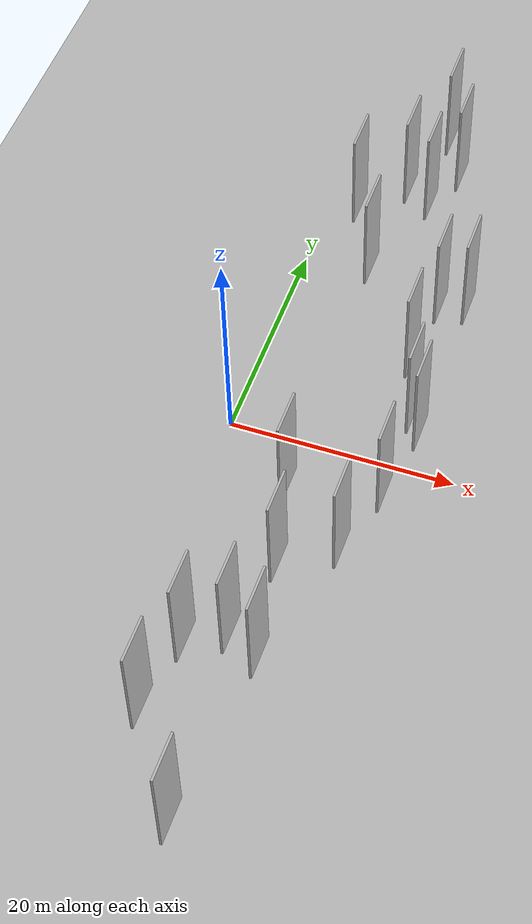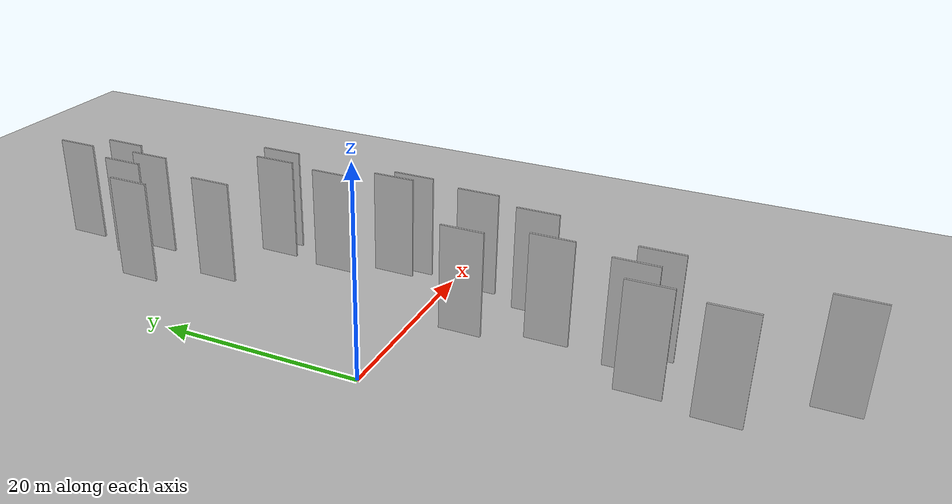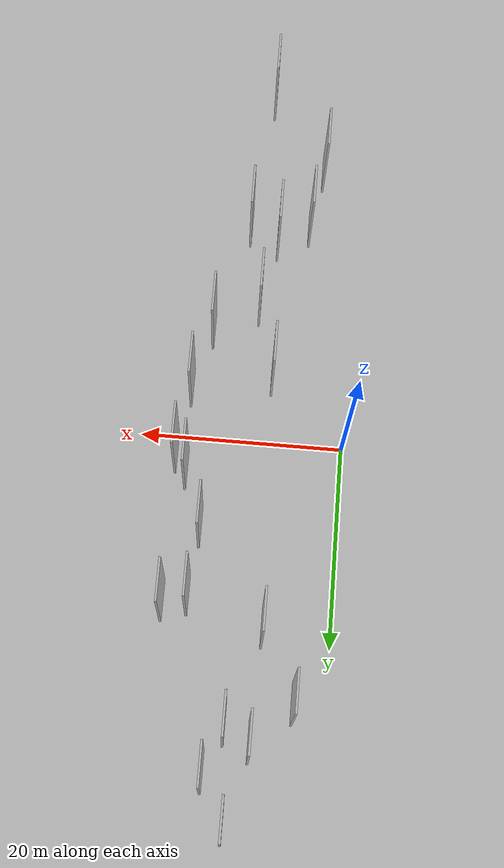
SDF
<?xml version="1.0" encoding="utf-8"?>

<sdf version="1.6">

   <world name="default">

      <gui fullscreen="0">

         <camera name="user_camera">

            <pose>-15 0 4.57585 0 0 0</pose>

            <view_controller>orbit</view_controller>

         </camera>

      </gui>

      <scene>

         <sky>

           <clouds>

             <speed>12</speed>

           </clouds>

         </sky>

         <ambient>0.4 0.4 0.4 1</ambient>

         <background>0.7 0.7 0.7 1</background>

         <shadows>1</shadows>

      </scene>

      <gravity>0 0 -9.8066</gravity>

      <magnetic_field>6e-06 2.3e-05 -4.2e-05</magnetic_field>

      <physics default="0" name="default_physics" type="ode">

         <ode>

            <solver>

               <type>quick</type>

               <iters>10</iters>

               <sor>1.0</sor>

               <use_dynamic_moi_rescaling>0</use_dynamic_moi_rescaling>

            </solver>

            <constraints>

               <cfm>0</cfm>

               <erp>0.2</erp>

               <contact_max_correcting_vel>100</contact_max_correcting_vel>

               <contact_surface_layer>0.001</contact_surface_layer>

            </constraints>

         </ode>

         <max_step_size>0.004</max_step_size>

         <real_time_factor>1</real_time_factor>

         <real_time_update_rate>250</real_time_update_rate>

      </physics>

      <light name="sun" type="directional">

         <cast_shadows>1</cast_shadows>

         <pose>0 0 10 0 0 0</pose>

         <diffuse>0.8 0.8 0.8 1</diffuse>

         <specular>0.2 0.2 0.2 1</specular>

         <attenuation>

            <range>1000</range>

            <constant>0.9</constant>

            <linear>0.01</linear>

            <quadratic>0.001</quadratic>

         </attenuation>

         <direction>-0.5 0.1 -0.9</direction>

      </light>

      <include>

         <name>ground_plane_1</name>

         <uri>model://HANNAS_ground_plane</uri>

         <pose>0 0 0  0 0 0</pose>

      </include>

      <include>

         <name>ground_plane_2</name>

         <uri>model://HANNAS_ground_plane</uri>

         <pose>100 0 0  0 0 0</pose>

      </include>

      <model name="HANNAS_wall_1">

         <static>1</static>

         <pose frame="">15.1925 -4.4480 2.5 0.000000 0.000000 1.570796</pose>

         <link name="link">

            <pose frame="">0 0 5.00 0 0 0</pose>

            <collision name="collision">

               <geometry>

                  <box>

                     <size>4.00 0.2 10.00</size>

                  </box>

               </geometry>

               <max_contacts>10</max_contacts>

               <surface>

                  <contact>

                     <ode/>

                  </contact>

                  <bounce/>

                  <friction>

                     <torsional>

                        <ode/>

                     </torsional>

                     <ode/>

                  </friction>

               </surface>

            </collision>

            <visual name="visual">

               <cast_shadows>0</cast_shadows>

               <geometry>

                  <box>

                     <size>4.00 0.2 10.00</size>

                  </box>

               </geometry>

               <material>

                  <script>

                     <uri>model://HANNAS_wall/materials/scripts</uri>

                     <uri>model://HANNAS_wall/materials/textures</uri>

                     <name>vrc/HANNAS_wall</name>

                  </script>

               </material>

            </visual>

            <self_collide>0</self_collide>

            <enable_wind>0</enable_wind>

            <kinematic>0</kinematic>

         </link>

      </model>

      <model name="HANNAS_wall_2">

         <static>1</static>

         <pose frame="">9.1956 -13.5521 2.5 0.000000 0.000000 1.570796</pose>

         <link name="link">

            <pose frame="">0 0 5.00 0 0 0</pose>

            <collision name="collision">

               <geometry>

                  <box>

                     <size>4.00 0.2 10.00</size>

                  </box>

               </geometry>

               <max_contacts>10</max_contacts>

               <surface>

                  <contact>

                     <ode/>

                  </contact>

                  <bounce/>

                  <friction>

                     <torsional>

                        <ode/>

                     </torsional>

                     <ode/>

                  </friction>

               </surface>

            </collision>

            <visual name="visual">

               <cast_shadows>0</cast_shadows>

               <geometry>

                  <box>

                     <size>4.00 0.2 10.00</size>

                  </box>

               </geometry>

               <material>

                  <script>

                     <uri>model://HANNAS_wall/materials/scripts</uri>

                     <uri>model://HANNAS_wall/materials/textures</uri>

                     <name>vrc/HANNAS_wall</name>

                  </script>

               </material>

            </visual>

            <self_collide>0</self_collide>

            <enable_wind>0</enable_wind>

            <kinematic>0</kinematic>

         </link>

      </model>

      <model name="HANNAS_wall_3">

         <static>1</static>

         <pose frame="">16.1554 17.0273 2.5 0.000000 0.000000 1.570796</pose>

         <link name="link">

            <pose frame="">0 0 5.00 0 0 0</pose>

            <collision name="collision">

               <geometry>

                  <box>

                     <size>4.00 0.2 10.00</size>

                  </box>

               </geometry>

               <max_contacts>10</max_contacts>

               <surface>

                  <contact>

                     <ode/>

                  </contact>

                  <bounce/>

                  <friction>

                     <torsional>

                        <ode/>

                     </torsional>

                     <ode/>

                  </friction>

               </surface>

            </collision>

            <visual name="visual">

               <cast_shadows>0</cast_shadows>

               <geometry>

                  <box>

                     <size>4.00 0.2 10.00</size>

                  </box>

               </geometry>

               <material>

                  <script>

                     <uri>model://HANNAS_wall/materials/scripts</uri>

                     <uri>model://HANNAS_wall/materials/textures</uri>

                     <name>vrc/HANNAS_wall</name>

                  </script>

               </material>

            </visual>

            <self_collide>0</self_collide>

            <enable_wind>0</enable_wind>

            <kinematic>0</kinematic>

         </link>

      </model>

      <model name="HANNAS_wall_4">

         <static>1</static>

         <pose frame="">16.1447 2.4765 2.5 0.000000 0.000000 1.570796</pose>

         <link name="link">

            <pose frame="">0 0 5.00 0 0 0</pose>

            <collision name="collision">

               <geometry>

                  <box>

                     <size>4.00 0.2 10.00</size>

                  </box>

               </geometry>

               <max_contacts>10</max_contacts>

               <surface>

                  <contact>

                     <ode/>

                  </contact>

                  <bounce/>

                  <friction>

                     <torsional>

                        <ode/>

                     </torsional>

                     <ode/>

                  </friction>

               </surface>

            </collision>

            <visual name="visual">

               <cast_shadows>0</cast_shadows>

               <geometry>

                  <box>

                     <size>4.00 0.2 10.00</size>

                  </box>

               </geometry>

               <material>

                  <script>

                     <uri>model://HANNAS_wall/materials/scripts</uri>

                     <uri>model://HANNAS_wall/materials/textures</uri>

                     <name>vrc/HANNAS_wall</name>

                  </script>

               </material>

            </visual>

            <self_collide>0</self_collide>

            <enable_wind>0</enable_wind>

            <kinematic>0</kinematic>

         </link>

      </model>

      <model name="HANNAS_wall_5">

         <static>1</static>

         <pose frame="">3.3052 25.6313 2.5 0.000000 0.000000 1.570796</pose>

         <link name="link">

            <pose frame="">0 0 5.00 0 0 0</pose>

            <collision name="collision">

               <geometry>

                  <box>

                     <size>4.00 0.2 10.00</size>

                  </box>

               </geometry>

               <max_contacts>10</max_contacts>

               <surface>

                  <contact>

                     <ode/>

                  </contact>

                  <bounce/>

                  <friction>

                     <torsional>

                        <ode/>

                     </torsional>

                     <ode/>

                  </friction>

               </surface>

            </collision>

            <visual name="visual">

               <cast_shadows>0</cast_shadows>

               <geometry>

                  <box>

                     <size>4.00 0.2 10.00</size>

                  </box>

               </geometry>

               <material>

                  <script>

                     <uri>model://HANNAS_wall/materials/scripts</uri>

                     <uri>model://HANNAS_wall/materials/textures</uri>

                     <name>vrc/HANNAS_wall</name>

                  </script>

               </material>

            </visual>

            <self_collide>0</self_collide>

            <enable_wind>0</enable_wind>

            <kinematic>0</kinematic>

         </link>

      </model>

      <model name="HANNAS_wall_6">

         <static>1</static>

         <pose frame="">7.0249 29.3904 2.5 0.000000 0.000000 1.570796</pose>

         <link name="link">

            <pose frame="">0 0 5.00 0 0 0</pose>

            <collision name="collision">

               <geometry>

                  <box>

                     <size>4.00 0.2 10.00</size>

                  </box>

               </geometry>

               <max_contacts>10</max_contacts>

               <surface>

                  <contact>

                     <ode/>

                  </contact>

                  <bounce/>

                  <friction>

                     <torsional>

                        <ode/>

                     </torsional>

                     <ode/>

                  </friction>

               </surface>

            </collision>

            <visual name="visual">

               <cast_shadows>0</cast_shadows>

               <geometry>

                  <box>

                     <size>4.00 0.2 10.00</size>

                  </box>

               </geometry>

               <material>

                  <script>

                     <uri>model://HANNAS_wall/materials/scripts</uri>

                     <uri>model://HANNAS_wall/materials/textures</uri>

                     <name>vrc/HANNAS_wall</name>

                  </script>

               </material>

            </visual>

            <self_collide>0</self_collide>

            <enable_wind>0</enable_wind>

            <kinematic>0</kinematic>

         </link>

      </model>

      <model name="HANNAS_wall_7">

         <static>1</static>

         <pose frame="">15.0430 4.0506 2.5 0.000000 0.000000 1.570796</pose>

         <link name="link">

            <pose frame="">0 0 5.00 0 0 0</pose>

            <collision name="collision">

               <geometry>

                  <box>

                     <size>4.00 0.2 10.00</size>

                  </box>

               </geometry>

               <max_contacts>10</max_contacts>

               <surface>

                  <contact>

                     <ode/>

                  </contact>

                  <bounce/>

                  <friction>

                     <torsional>

                        <ode/>

                     </torsional>

                     <ode/>

                  </friction>

               </surface>

            </collision>

            <visual name="visual">

               <cast_shadows>0</cast_shadows>

               <geometry>

                  <box>

                     <size>4.00 0.2 10.00</size>

                  </box>

               </geometry>

               <material>

                  <script>

                     <uri>model://HANNAS_wall/materials/scripts</uri>

                     <uri>model://HANNAS_wall/materials/textures</uri>

                     <name>vrc/HANNAS_wall</name>

                  </script>

               </material>

            </visual>

            <self_collide>0</self_collide>

            <enable_wind>0</enable_wind>

            <kinematic>0</kinematic>

         </link>

      </model>

      <model name="HANNAS_wall_8">

         <static>1</static>

         <pose frame="">9.4013 28.0020 2.5 0.000000 0.000000 1.570796</pose>

         <link name="link">

            <pose frame="">0 0 5.00 0 0 0</pose>

            <collision name="collision">

               <geometry>

                  <box>

                     <size>4.00 0.2 10.00</size>

                  </box>

               </geometry>

               <max_contacts>10</max_contacts>

               <surface>

                  <contact>

                     <ode/>

                  </contact>

                  <bounce/>

                  <friction>

                     <torsional>

                        <ode/>

                     </torsional>

                     <ode/>

                  </friction>

               </surface>

            </collision>

            <visual name="visual">

               <cast_shadows>0</cast_shadows>

               <geometry>

                  <box>

                     <size>4.00 0.2 10.00</size>

                  </box>

               </geometry>

               <material>

                  <script>

                     <uri>model://HANNAS_wall/materials/scripts</uri>

                     <uri>model://HANNAS_wall/materials/textures</uri>

                     <name>vrc/HANNAS_wall</name>

                  </script>

               </material>

            </visual>

            <self_collide>0</self_collide>

            <enable_wind>0</enable_wind>

            <kinematic>0</kinematic>

         </link>

      </model>

      <model name="HANNAS_wall_9">

         <static>1</static>

         <pose frame="">7.8689 -20.9231 2.5 0.000000 0.000000 1.570796</pose>

         <link name="link">

            <pose frame="">0 0 5.00 0 0 0</pose>

            <collision name="collision">

               <geometry>

                  <box>

                     <size>4.00 0.2 10.00</size>

                  </box>

               </geometry>

               <max_contacts>10</max_contacts>

               <surface>

                  <contact>

                     <ode/>

                  </contact>

                  <bounce/>

                  <friction>

                     <torsional>

                        <ode/>

                     </torsional>

                     <ode/>

                  </friction>

               </surface>

            </collision>

            <visual name="visual">

               <cast_shadows>0</cast_shadows>

               <geometry>

                  <box>

                     <size>4.00 0.2 10.00</size>

                  </box>

               </geometry>

               <material>

                  <script>

                     <uri>model://HANNAS_wall/materials/scripts</uri>

                     <uri>model://HANNAS_wall/materials/textures</uri>

                     <name>vrc/HANNAS_wall</name>

                  </script>

               </material>

            </visual>

            <self_collide>0</self_collide>

            <enable_wind>0</enable_wind>

            <kinematic>0</kinematic>

         </link>

      </model>

      <model name="HANNAS_wall_10">

         <static>1</static>

         <pose frame="">3.7131 -29.2033 2.5 0.000000 0.000000 1.570796</pose>

         <link name="link">

            <pose frame="">0 0 5.00 0 0 0</pose>

            <collision name="collision">

               <geometry>

                  <box>

                     <size>4.00 0.2 10.00</size>

                  </box>

               </geometry>

               <max_contacts>10</max_contacts>

               <surface>

                  <contact>

                     <ode/>

                  </contact>

                  <bounce/>

                  <friction>

                     <torsional>

                        <ode/>

                     </torsional>

                     <ode/>

                  </friction>

               </surface>

            </collision>

            <visual name="visual">

               <cast_shadows>0</cast_shadows>

               <geometry>

                  <box>

                     <size>4.00 0.2 10.00</size>

                  </box>

               </geometry>

               <material>

                  <script>

                     <uri>model://HANNAS_wall/materials/scripts</uri>

                     <uri>model://HANNAS_wall/materials/textures</uri>

                     <name>vrc/HANNAS_wall</name>

                  </script>

               </material>

            </visual>

            <self_collide>0</self_collide>

            <enable_wind>0</enable_wind>

            <kinematic>0</kinematic>

         </link>

      </model>

      <model name="HANNAS_wall_11">

         <static>1</static>

         <pose frame="">11.0939 32.3496 2.5 0.000000 0.000000 1.570796</pose>

         <link name="link">

            <pose frame="">0 0 5.00 0 0 0</pose>

            <collision name="collision">

               <geometry>

                  <box>

                     <size>4.00 0.2 10.00</size>

                  </box>

               </geometry>

               <max_contacts>10</max_contacts>

               <surface>

                  <contact>

                     <ode/>

                  </contact>

                  <bounce/>

                  <friction>

                     <torsional>

                        <ode/>

                     </torsional>

                     <ode/>

                  </friction>

               </surface>

            </collision>

            <visual name="visual">

               <cast_shadows>0</cast_shadows>

               <geometry>

                  <box>

                     <size>4.00 0.2 10.00</size>

                  </box>

               </geometry>

               <material>

                  <script>

                     <uri>model://HANNAS_wall/materials/scripts</uri>

                     <uri>model://HANNAS_wall/materials/textures</uri>

                     <name>vrc/HANNAS_wall</name>

                  </script>

               </material>

            </visual>

            <self_collide>0</self_collide>

            <enable_wind>0</enable_wind>

            <kinematic>0</kinematic>

         </link>

      </model>

      <model name="HANNAS_wall_12">

         <static>1</static>

         <pose frame="">13.7963 16.3314 2.5 0.000000 0.000000 1.570796</pose>

         <link name="link">

            <pose frame="">0 0 5.00 0 0 0</pose>

            <collision name="collision">

               <geometry>

                  <box>

                     <size>4.00 0.2 10.00</size>

                  </box>

               </geometry>

               <max_contacts>10</max_contacts>

               <surface>

                  <contact>

                     <ode/>

                  </contact>

                  <bounce/>

                  <friction>

                     <torsional>

                        <ode/>

                     </torsional>

                     <ode/>

                  </friction>

               </surface>

            </collision>

            <visual name="visual">

               <cast_shadows>0</cast_shadows>

               <geometry>

                  <box>

                     <size>4.00 0.2 10.00</size>

                  </box>

               </geometry>

               <material>

                  <script>

                     <uri>model://HANNAS_wall/materials/scripts</uri>

                     <uri>model://HANNAS_wall/materials/textures</uri>

                     <name>vrc/HANNAS_wall</name>

                  </script>

               </material>

            </visual>

            <self_collide>0</self_collide>

            <enable_wind>0</enable_wind>

            <kinematic>0</kinematic>

         </link>

      </model>

      <model name="HANNAS_wall_13">

         <static>1</static>

         <pose frame="">8.9138 36.6285 2.5 0.000000 0.000000 1.570796</pose>

         <link name="link">

            <pose frame="">0 0 5.00 0 0 0</pose>

            <collision name="collision">

               <geometry>

                  <box>

                     <size>4.00 0.2 10.00</size>

                  </box>

               </geometry>

               <max_contacts>10</max_contacts>

               <surface>

                  <contact>

                     <ode/>

                  </contact>

                  <bounce/>

                  <friction>

                     <torsional>

                        <ode/>

                     </torsional>

                     <ode/>

                  </friction>

               </surface>

            </collision>

            <visual name="visual">

               <cast_shadows>0</cast_shadows>

               <geometry>

                  <box>

                     <size>4.00 0.2 10.00</size>

                  </box>

               </geometry>

               <material>

                  <script>

                     <uri>model://HANNAS_wall/materials/scripts</uri>

                     <uri>model://HANNAS_wall/materials/textures</uri>

                     <name>vrc/HANNAS_wall</name>

                  </script>

               </material>

            </visual>

            <self_collide>0</self_collide>

            <enable_wind>0</enable_wind>

            <kinematic>0</kinematic>

         </link>

      </model>

      <model name="HANNAS_wall_14">

         <static>1</static>

         <pose frame="">13.5782 -10.7197 2.5 0.000000 0.000000 1.570796</pose>

         <link name="link">

            <pose frame="">0 0 5.00 0 0 0</pose>

            <collision name="collision">

               <geometry>

                  <box>

                     <size>4.00 0.2 10.00</size>

                  </box>

               </geometry>

               <max_contacts>10</max_contacts>

               <surface>

                  <contact>

                     <ode/>

                  </contact>

                  <bounce/>

                  <friction>

                     <torsional>

                        <ode/>

                     </torsional>

                     <ode/>

                  </friction>

               </surface>

            </collision>

            <visual name="visual">

               <cast_shadows>0</cast_shadows>

               <geometry>

                  <box>

                     <size>4.00 0.2 10.00</size>

                  </box>

               </geometry>

               <material>

                  <script>

                     <uri>model://HANNAS_wall/materials/scripts</uri>

                     <uri>model://HANNAS_wall/materials/textures</uri>

                     <name>vrc/HANNAS_wall</name>

                  </script>

               </material>

            </visual>

            <self_collide>0</self_collide>

            <enable_wind>0</enable_wind>

            <kinematic>0</kinematic>

         </link>

      </model>

      <model name="HANNAS_wall_15">

         <static>1</static>

         <pose frame="">10.7086 -22.2856 2.5 0.000000 0.000000 1.570796</pose>

         <link name="link">

            <pose frame="">0 0 5.00 0 0 0</pose>

            <collision name="collision">

               <geometry>

                  <box>

                     <size>4.00 0.2 10.00</size>

                  </box>

               </geometry>

               <max_contacts>10</max_contacts>

               <surface>

                  <contact>

                     <ode/>

                  </contact>

                  <bounce/>

                  <friction>

                     <torsional>

                        <ode/>

                     </torsional>

                     <ode/>

                  </friction>

               </surface>

            </collision>

            <visual name="visual">

               <cast_shadows>0</cast_shadows>

               <geometry>

                  <box>

                     <size>4.00 0.2 10.00</size>

                  </box>

               </geometry>

               <material>

                  <script>

                     <uri>model://HANNAS_wall/materials/scripts</uri>

                     <uri>model://HANNAS_wall/materials/textures</uri>

                     <name>vrc/HANNAS_wall</name>

                  </script>

               </material>

            </visual>

            <self_collide>0</self_collide>

            <enable_wind>0</enable_wind>

            <kinematic>0</kinematic>

         </link>

      </model>

      <model name="HANNAS_wall_16">

         <static>1</static>

         <pose frame="">6.5832 18.8203 2.5 0.000000 0.000000 1.570796</pose>

         <link name="link">

            <pose frame="">0 0 5.00 0 0 0</pose>

            <collision name="collision">

               <geometry>

                  <box>

                     <size>4.00 0.2 10.00</size>

                  </box>

               </geometry>

               <max_contacts>10</max_contacts>

               <surface>

                  <contact>

                     <ode/>

                  </contact>

                  <bounce/>

                  <friction>

                     <torsional>

                        <ode/>

                     </torsional>

                     <ode/>

                  </friction>

               </surface>

            </collision>

            <visual name="visual">

               <cast_shadows>0</cast_shadows>

               <geometry>

                  <box>

                     <size>4.00 0.2 10.00</size>

                  </box>

               </geometry>

               <material>

                  <script>

                     <uri>model://HANNAS_wall/materials/scripts</uri>

                     <uri>model://HANNAS_wall/materials/textures</uri>

                     <name>vrc/HANNAS_wall</name>

                  </script>

               </material>

            </visual>

            <self_collide>0</self_collide>

            <enable_wind>0</enable_wind>

            <kinematic>0</kinematic>

         </link>

      </model>

      <model name="HANNAS_wall_17">

         <static>1</static>

         <pose frame="">7.4176 -6.2076 2.5 0.000000 0.000000 1.570796</pose>

         <link name="link">

            <pose frame="">0 0 5.00 0 0 0</pose>

            <collision name="collision">

               <geometry>

                  <box>

                     <size>4.00 0.2 10.00</size>

                  </box>

               </geometry>

               <max_contacts>10</max_contacts>

               <surface>

                  <contact>

                     <ode/>

                  </contact>

                  <bounce/>

                  <friction>

                     <torsional>

                        <ode/>

                     </torsional>

                     <ode/>

                  </friction>

               </surface>

            </collision>

            <visual name="visual">

               <cast_shadows>0</cast_shadows>

               <geometry>

                  <box>

                     <size>4.00 0.2 10.00</size>

                  </box>

               </geometry>

               <material>

                  <script>

                     <uri>model://HANNAS_wall/materials/scripts</uri>

                     <uri>model://HANNAS_wall/materials/textures</uri>

                     <name>vrc/HANNAS_wall</name>

                  </script>

               </material>

            </visual>

            <self_collide>0</self_collide>

            <enable_wind>0</enable_wind>

            <kinematic>0</kinematic>

         </link>

      </model>

      <model name="HANNAS_wall_18">

         <static>1</static>

         <pose frame="">9.2504 -37.2852 2.5 0.000000 0.000000 1.570796</pose>

         <link name="link">

            <pose frame="">0 0 5.00 0 0 0</pose>

            <collision name="collision">

               <geometry>

                  <box>

                     <size>4.00 0.2 10.00</size>

                  </box>

               </geometry>

               <max_contacts>10</max_contacts>

               <surface>

                  <contact>

                     <ode/>

                  </contact>

                  <bounce/>

                  <friction>

                     <torsional>

                        <ode/>

                     </torsional>

                     <ode/>

                  </friction>

               </surface>

            </collision>

            <visual name="visual">

               <cast_shadows>0</cast_shadows>

               <geometry>

                  <box>

                     <size>4.00 0.2 10.00</size>

                  </box>

               </geometry>

               <material>

                  <script>

                     <uri>model://HANNAS_wall/materials/scripts</uri>

                     <uri>model://HANNAS_wall/materials/textures</uri>

                     <name>vrc/HANNAS_wall</name>

                  </script>

               </material>

            </visual>

            <self_collide>0</self_collide>

            <enable_wind>0</enable_wind>

            <kinematic>0</kinematic>

         </link>

      </model>

      <model name="HANNAS_wall_19">

         <static>1</static>

         <pose frame="">13.1922 9.7101 2.5 0.000000 0.000000 1.570796</pose>

         <link name="link">

            <pose frame="">0 0 5.00 0 0 0</pose>

            <collision name="collision">

               <geometry>

                  <box>

                     <size>4.00 0.2 10.00</size>

                  </box>

               </geometry>

               <max_contacts>10</max_contacts>

               <surface>

                  <contact>

                     <ode/>

                  </contact>

                  <bounce/>

                  <friction>

                     <torsional>

                        <ode/>

                     </torsional>

                     <ode/>

                  </friction>

               </surface>

            </collision>

            <visual name="visual">

               <cast_shadows>0</cast_shadows>

               <geometry>

                  <box>

                     <size>4.00 0.2 10.00</size>

                  </box>

               </geometry>

               <material>

                  <script>

                     <uri>model://HANNAS_wall/materials/scripts</uri>

                     <uri>model://HANNAS_wall/materials/textures</uri>

                     <name>vrc/HANNAS_wall</name>

                  </script>

               </material>

            </visual>

            <self_collide>0</self_collide>

            <enable_wind>0</enable_wind>

            <kinematic>0</kinematic>

         </link>

      </model>

      <model name="HANNAS_wall_20">

         <static>1</static>

         <pose frame="">4.7611 -22.7635 2.5 0.000000 0.000000 1.570796</pose>

         <link name="link">

            <pose frame="">0 0 5.00 0 0 0</pose>

            <collision name="collision">

               <geometry>

                  <box>

                     <size>4.00 0.2 10.00</size>

                  </box>

               </geometry>

               <max_contacts>10</max_contacts>

               <surface>

                  <contact>

                     <ode/>

                  </contact>

                  <bounce/>

                  <friction>

                     <torsional>

                        <ode/>

                     </torsional>

                     <ode/>

                  </friction>

               </surface>

            </collision>

            <visual name="visual">

               <cast_shadows>0</cast_shadows>

               <geometry>

                  <box>

                     <size>4.00 0.2 10.00</size>

                  </box>

               </geometry>

               <material>

                  <script>

                     <uri>model://HANNAS_wall/materials/scripts</uri>

                     <uri>model://HANNAS_wall/materials/textures</uri>

                     <name>vrc/HANNAS_wall</name>

                  </script>

               </material>

            </visual>

            <self_collide>0</self_collide>

            <enable_wind>0</enable_wind>

            <kinematic>0</kinematic>

         </link>

      </model>

   </world>

</sdf>

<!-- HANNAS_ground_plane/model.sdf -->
<sdf version="1.4">
<model name="HANNAS_ground_plane">
  <static>true</static>
    <link name="link">
      <collision name="collision">
        <geometry>
          <plane>
            <normal>0 0 1</normal>
            <size>1000 1000</size>
          </plane>
        </geometry>
        <surface>
          <friction>
            <ode>
              <mu>100</mu>
              <mu2>50</mu2>
            </ode>
          </friction>
        </surface>
      </collision>
      <visual name="visual">
        <cast_shadows>false</cast_shadows>
        <geometry>
          <plane>
            <normal>0 0 1</normal>
            <size>1000 1000</size>
          </plane>
        </geometry>
        <material>
          <script>
            <uri>model://HANNAS_ground_plane/materials/scripts/HANNAS_ground_plane.material</uri>
	    <uri>model://HANNAS_ground_plane/materials/textures</uri>
            <name>HANNASGroundPlane/Image</name>
          </script>
        </material>
      </visual>
    </link>
  </model>
</sdf>
